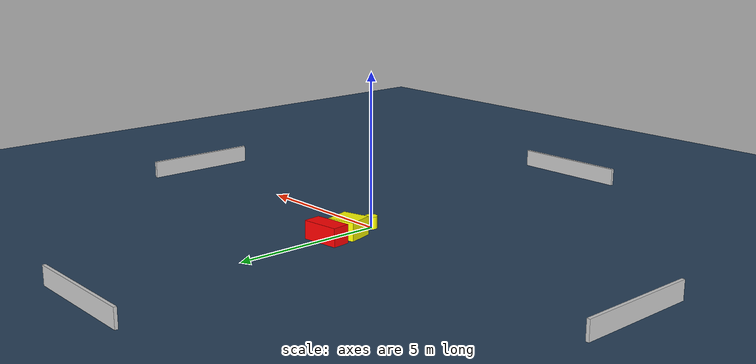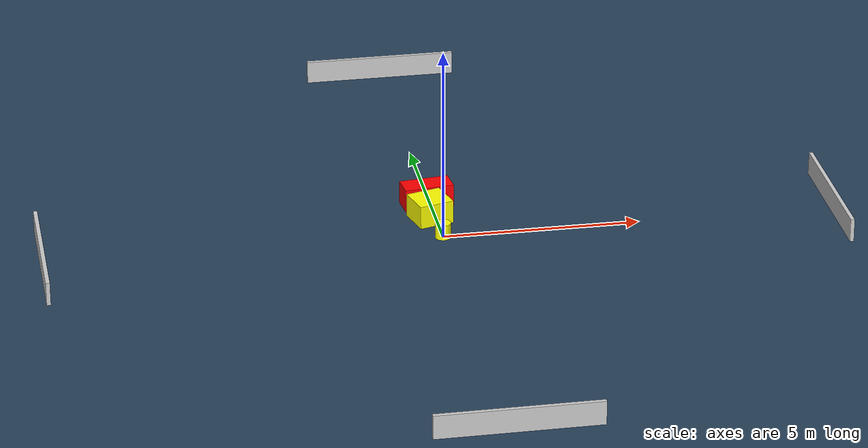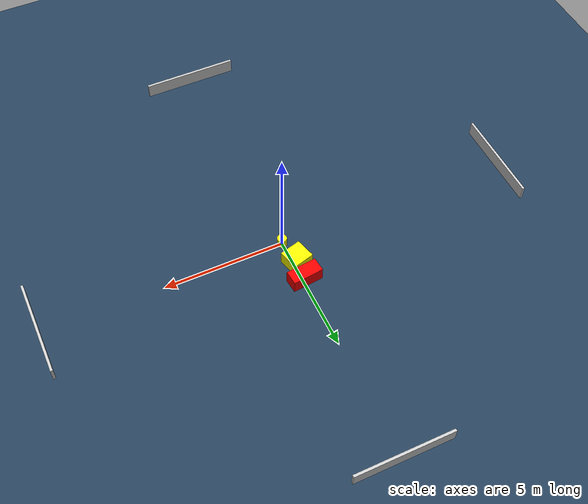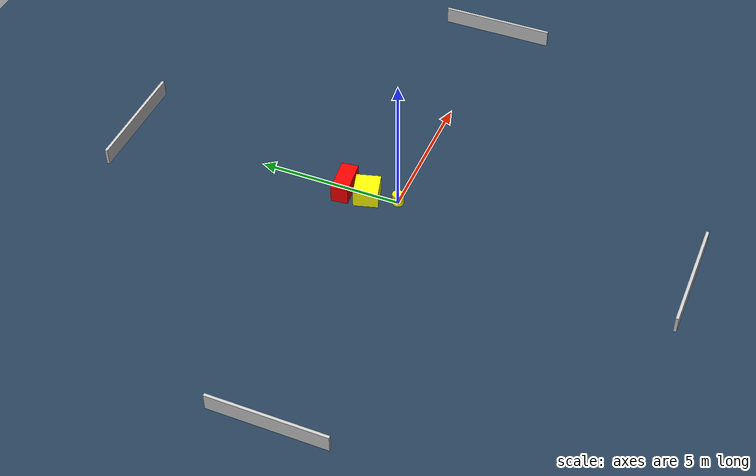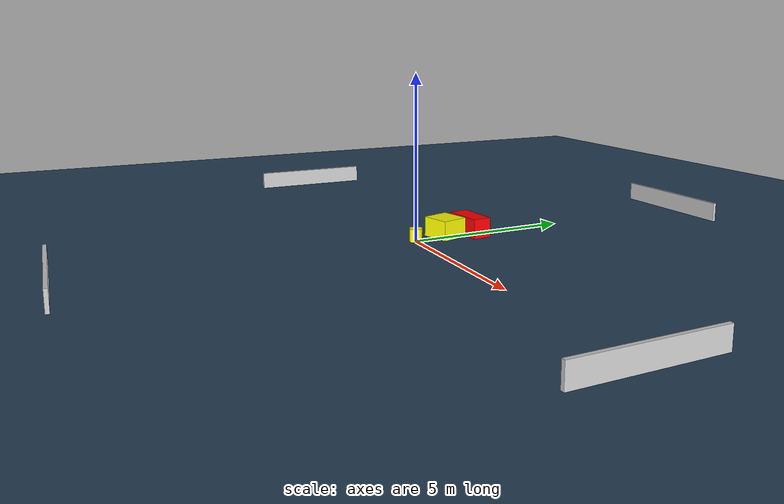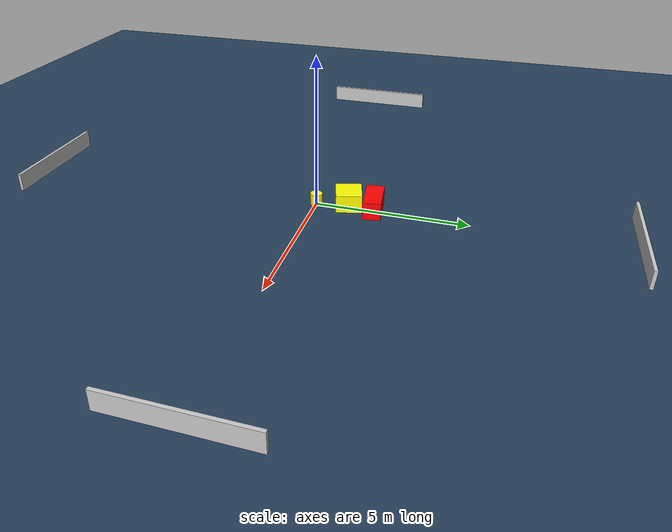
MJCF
<?xml version="1.0" ?>
<mujoco model="generated_environment">
  <option timestep="0.01" integrator="RK4" cone="elliptic"/>
  <default>
    <geom density="1"/>
  </default>
  <asset>
    <texture builtin="gradient" height="3072" name="skybox" rgb1="0.3 0.5 0.7" rgb2="0 0 0" type="skybox" width="512"/>
    <texture builtin="checker" height="300" name="groundplane" rgb1="0.2 0.3 0.4" rgb2="0.1 0.2 0.3" type="2d" width="300"/>
    <material name="groundplane" reflectance="0.2" texrepeat="5 5" texture="groundplane"/>
  </asset>
  <worldbody>
    <light dir="0 0 -1" directional="true" pos="0 0 1.5"/>
    <geom condim="3" friction="0.5 0.005 0.001" material="groundplane" name="floor" pos="0 0 0" size="0 0 0.05" type="plane"/>
    <body name="walls">
      <geom name="wall_1" condim="4" pos="-10.0 0.0 0.3" rgba="0.800000011920929 0.800000011920929 0.800000011920929 1.0" size="0.05 2.0 0.3" type="box"/>
      <geom name="wall_2" condim="4" pos="10.0 0.0 0.3" rgba="0.800000011920929 0.800000011920929 0.800000011920929 1.0" size="0.05 2.0 0.3" type="box"/>
      <geom name="wall_3" condim="4" pos="0.0 -10.0 0.3" rgba="0.800000011920929 0.800000011920929 0.800000011920929 1.0" size="2.0 0.05 0.3" type="box"/>
      <geom name="wall_4" condim="4" pos="0.0 10.0 0.3" rgba="0.800000011920929 0.800000011920929 0.800000011920929 1.0" size="2.0 0.05 0.3" type="box"/>
    </body>
    <body name="robot">
      <joint name="joint_x" type="slide" pos="0 0 0" axis="1 0 0"/>
      <joint name="joint_y" type="slide" pos="0 0 0" axis="0 1 0"/>
      <geom name="robot" type="cylinder" pos="0.0 0.0 0.2" size="0.2 0.2 0.0" mass="5.0" friction="1.0 0.005 0.0001" condim="4" rgba="1.0 1.0 0.0 1.0"/>
    </body>
    <body name="obstacle_1_movable">
      <geom name="obstacle_1_movable" condim="4" pos="-0.14725277299094497 1.06180564028947 0.3" euler="0 0 285.36455716388946" friction="0.0 0.005 0.001" rgba="1.0 1.0 0.0 1.0" size="0.4245359587852692 0.452717202649186 0.3" type="box" mass="0.1"/>
      <joint type="free"/>
    </body>
    <body name="obstacle_2_static">
      <geom name="obstacle_2_static" condim="4" pos="-0.08859119221490279 1.907195448950552 0.3" euler="0 0 186.1725055783654" friction="0.0 0.005 0.001" rgba="1.0 0.0 0.0 1.0" size="0.6329927236719448 0.2947787473280852 0.3" type="box"/>
    </body>
  </worldbody>
  <actuator>
    <motor name="actuator_x" joint="joint_x" gear="1" ctrlrange="-1 1"/>
    <motor name="actuator_y" joint="joint_y" gear="1" ctrlrange="-1 1"/>
  </actuator>
</mujoco>
